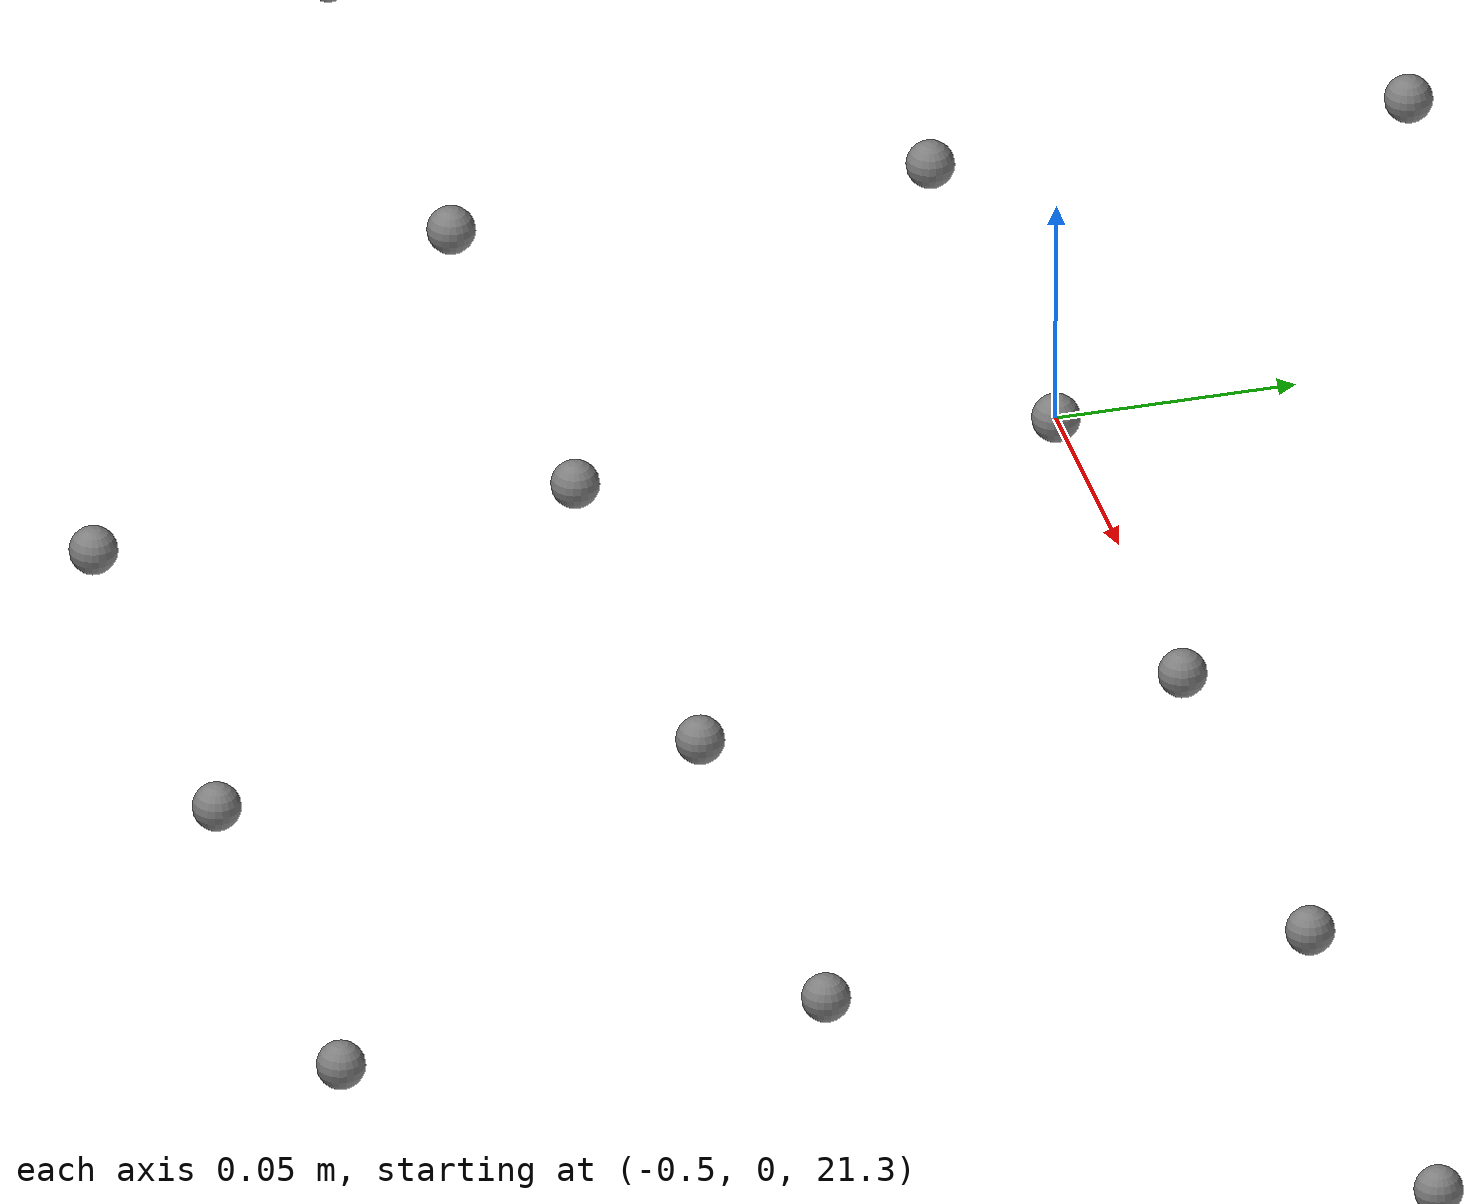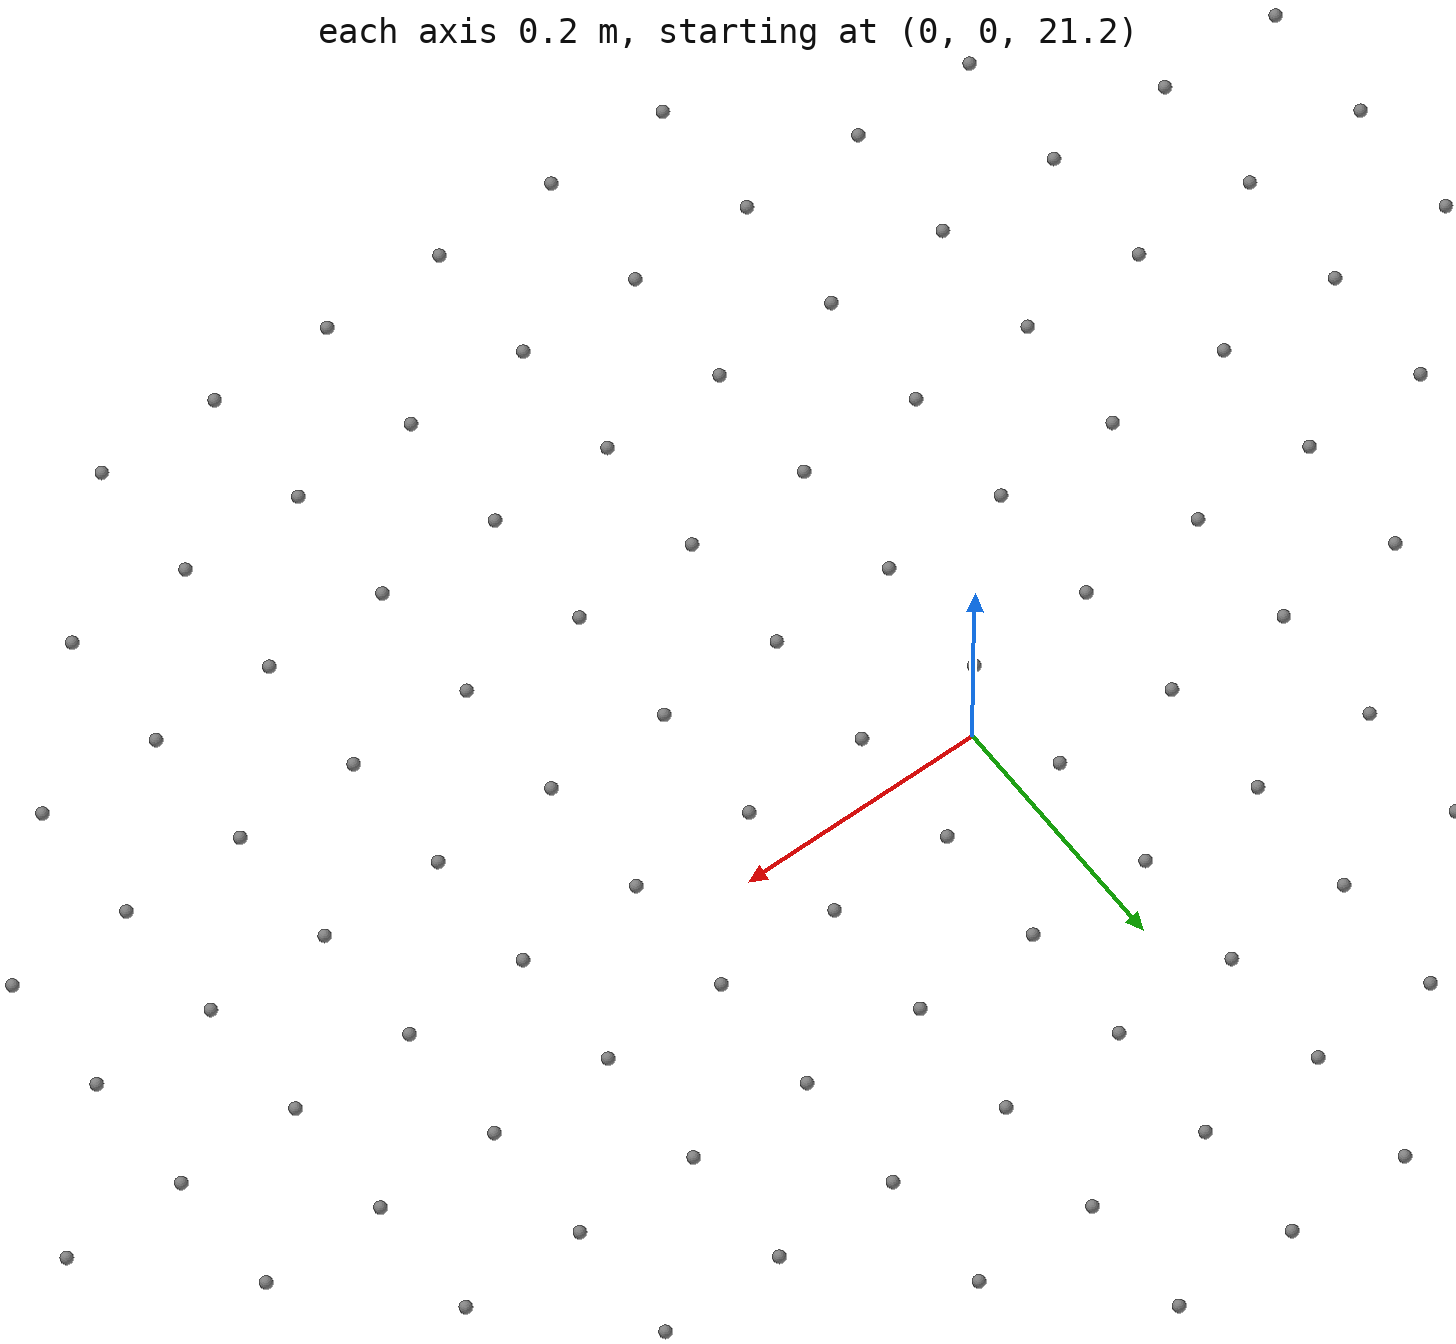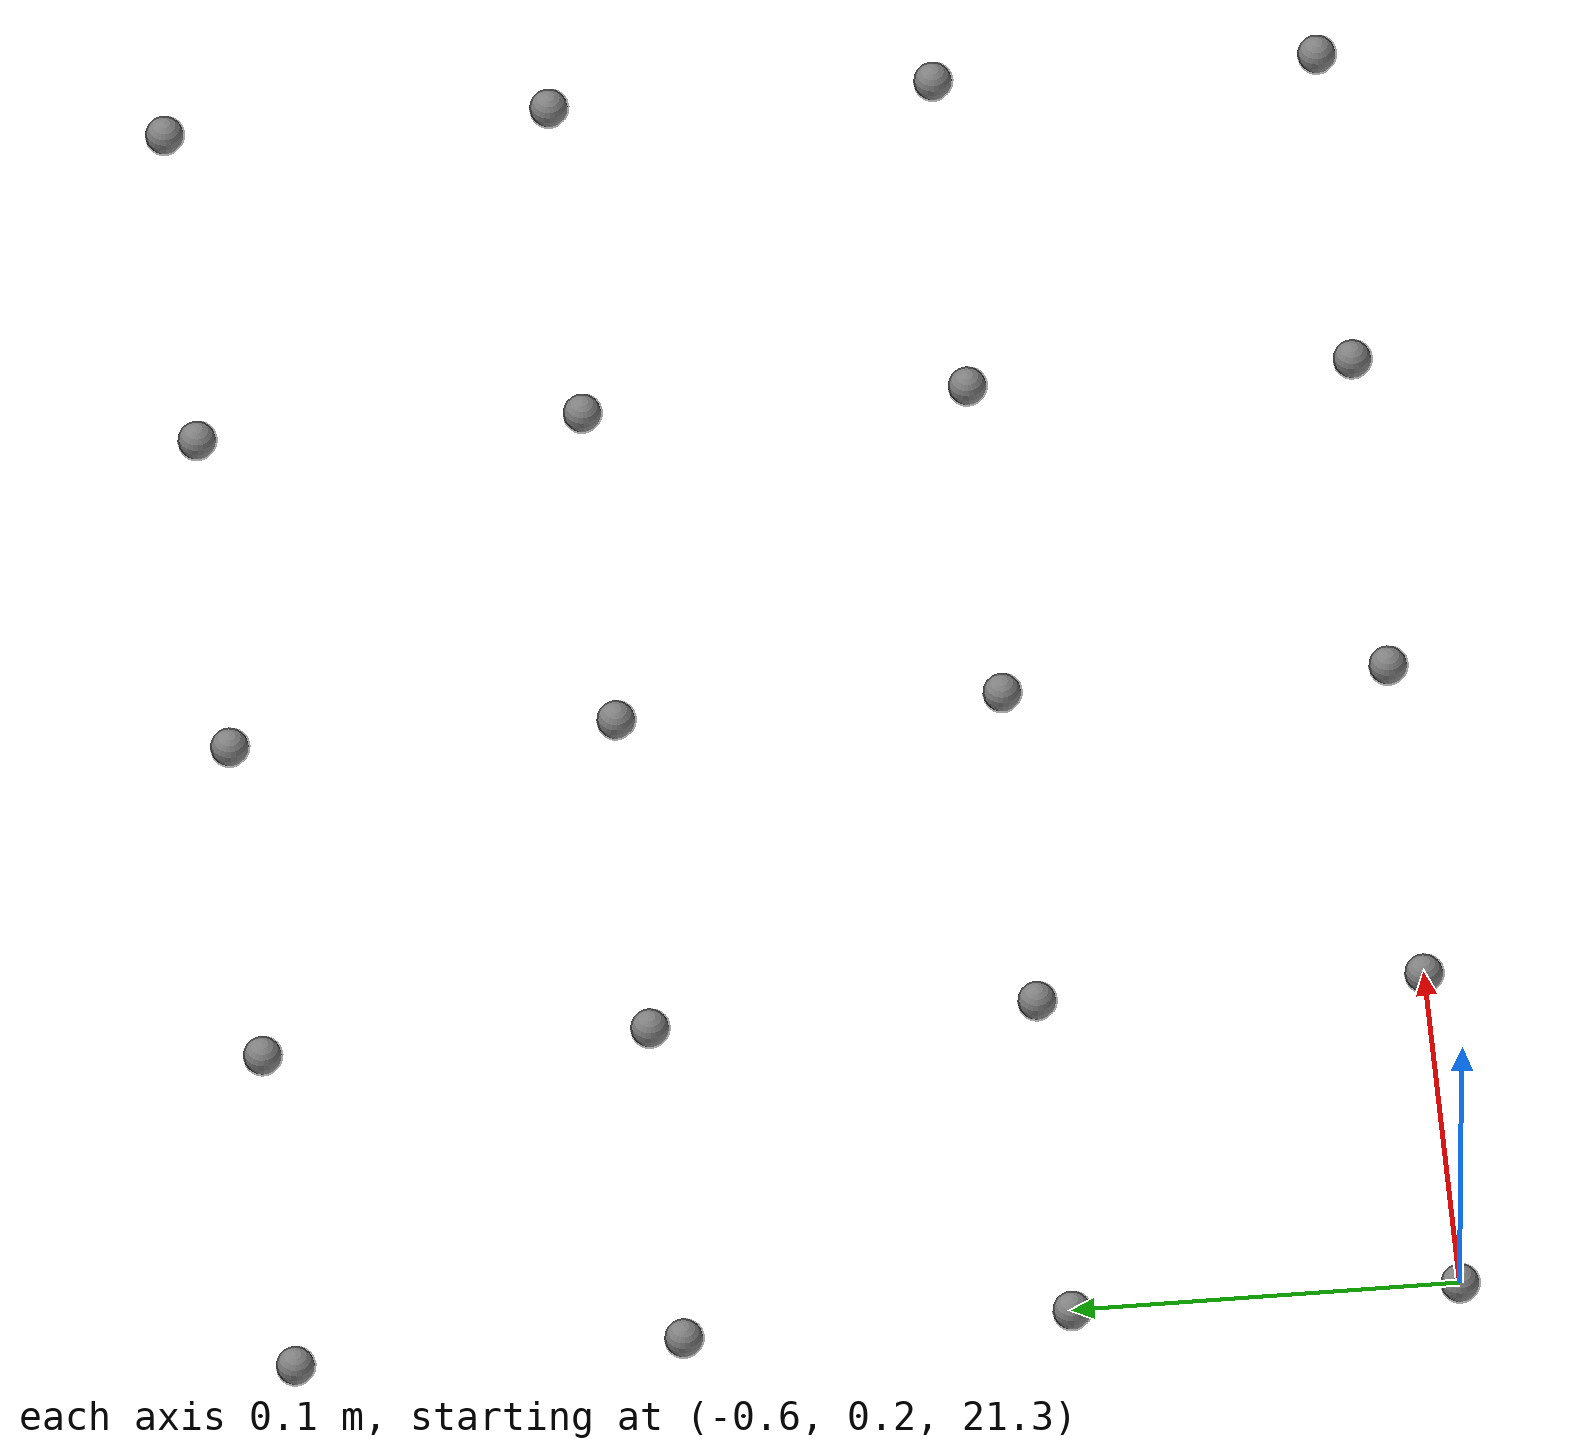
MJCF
<mujoco model="a2">

  <!-- ========== Compiler ========== -->
  <compiler angle="radian" meshdir="../meshes" autolimits="true"/>

  <!-- ========== Simulation Options ========== -->
  <option timestep="0.005" gravity="0 0 -9.81" iterations="4" ls_iterations="4">
    <flag contact="enable" gravity="enable"/>
  </option>

  <!-- ========== Size Parameters (reference) ========== -->
  <size njmax="500" nconmax="500" nstack="500000"/>

  <!-- ========== Defaults ========== -->
  <default>
    <!-- Joint defaults: all revolute joints are limited -->
    <joint type="hinge" damping="0.2" armature="0.01" limited="true"/>
    <geom friction="0.8 0.5 0.5" solimp="0.998 0.998 0.001" solref="0.02 1"/>
    <motor ctrlrange="-200 200" ctrllimited="false"/>

    <!-- Visual-only geoms (no collision) -->
    <default class="visual">
      <geom contype="0" conaffinity="0" group="1"/>
    </default>

    <!-- Collision geoms -->
    <default class="collision">
      <geom contype="1" conaffinity="1" group="3"/>
    </default>

    <!-- Leg segment collision cylinders -->
    <default class="leg_col">
      <geom type="cylinder" contype="1" conaffinity="1" group="3"
            rgba="0.4 0.4 0.4 1" solimp="0.998 0.998 0.0001"/>
    </default>

    <!-- Foot collision -->
    <default class="foot_col">
      <geom type="box" contype="1" conaffinity="1" group="3"
            rgba="0.2 0.6 0.2 1" solimp="0.9 0.99 0.0001"/>
    </default>
  </default>

  <!-- ========== Assets ========== -->
  <asset>
    <!-- STL Mesh files for visual rendering -->
    <mesh name="mesh_base"            file="base_link.STL"/>
    <mesh name="mesh_l_hip_roll"      file="left_hip_roll_link.STL"/>
    <mesh name="mesh_l_hip_yaw"       file="left_hip_yaw_link.STL"/>
    <mesh name="mesh_l_hip_pitch"     file="left_hip_pitch_link.STL"/>
    <mesh name="mesh_l_knee"          file="left_knee_link.STL"/>
    <mesh name="mesh_l_ankle_pitch"   file="left_ankle_pitch_link.STL"/>
    <mesh name="mesh_l_ankle_roll"    file="left_ankle_roll_link.STL"/>
    <mesh name="mesh_r_hip_roll"      file="right_hip_roll_link.STL"/>
    <mesh name="mesh_r_hip_yaw"       file="right_hip_yaw_link.STL"/>
    <mesh name="mesh_r_hip_pitch"     file="right_hip_pitch_link.STL"/>
    <mesh name="mesh_r_knee"          file="right_knee_link.STL"/>
    <mesh name="mesh_r_ankle_pitch"   file="right_ankle_pitch_link.STL"/>
    <mesh name="mesh_r_ankle_roll"    file="right_ankle_roll_link.STL"/>
  </asset>

  <asset>
    <!-- Materials -->
    <texture name="texture_plane" type="2d" builtin="checker"
             rgb1="0.2745 0.5098 0.7059" rgb2="0.5294 0.8078 0.9804"
             width="128" height="128"/>
    <material name="material_plane" reflectance="0.0" texture="texture_plane"
              texrepeat="1 1" texuniform="true"/>
    <material name="gray"  rgba="0.3 0.3 0.3 1"/>
    <material name="blue"  rgba="0.0 0.0 1.0 1"/>
    <material name="red"   rgba="1.0 0.0 0.0 1"/>
    <material name="green" rgba="0.0 1.0 0.0 1"/>
    <material name="white" rgba="0.9 0.9 0.9 1"/>
  </asset>

  <!-- ========== Worldbody ========== -->
  <worldbody>
    <!-- Ground plane -->
    <geom name="floor" type="plane" size="100 100 0.2"
          material="material_plane" conaffinity="2"/>

    <!-- Lighting -->
    <light directional="true" ambient="0.3 0.3 0.3" pos="30 30 30"
           dir="0 -0.5 -1" diffuse="0.5 0.5 0.5" specular="0.5 0.5 0.5"/>

    <!-- ===== BASE LINK (Root) ===== -->
    <body name="base_link" pos="0 0 1.3" euler="0 0 0">
      <freejoint name="base_free"/>

      <!-- Inertial: CoM offset from body origin (from URDF) -->
      <inertial pos="-0.14464 0 0.63562" mass="1.6082"
                fullinertia="1.6349 1.6777 0.06302 0 0.2309 0"/>

      <!-- Visual (mesh only) -->
      <geom class="visual" type="mesh" mesh="mesh_base" rgba="1 0 0 1"/>

      <!-- Collision: bounding box -->
      <geom class="collision" type="box" size="0.2 0.15 0.75"
            pos="-0.2 0 0.75" rgba="0.5 0.5 0.5 1"/>

      <!-- IMU site (mounted near CoM on base) -->
      <site name="site_imu" pos="-0.1 0 0.6" size="0.02"/>

      <site name="site_hs_00_00" pos="-0.800 -0.500 20.0" size="0.005"/>
      <site name="site_hs_01_00" pos="-0.700 -0.500 20.0" size="0.005"/>
      <site name="site_hs_02_00" pos="-0.600 -0.500 20.0" size="0.005"/>
      <site name="site_hs_03_00" pos="-0.500 -0.500 20.0" size="0.005"/>
      <site name="site_hs_04_00" pos="-0.400 -0.500 20.0" size="0.005"/>
      <site name="site_hs_05_00" pos="-0.300 -0.500 20.0" size="0.005"/>
      <site name="site_hs_06_00" pos="-0.200 -0.500 20.0" size="0.005"/>
      <site name="site_hs_07_00" pos="-0.100 -0.500 20.0" size="0.005"/>
      <site name="site_hs_08_00" pos="-0.000 -0.500 20.0" size="0.005"/>
      <site name="site_hs_09_00" pos="0.100 -0.500 20.0" size="0.005"/>
      <site name="site_hs_10_00" pos="0.200 -0.500 20.0" size="0.005"/>
      <site name="site_hs_11_00" pos="0.300 -0.500 20.0" size="0.005"/>
      <site name="site_hs_12_00" pos="0.400 -0.500 20.0" size="0.005"/>
      <site name="site_hs_13_00" pos="0.500 -0.500 20.0" size="0.005"/>
      <site name="site_hs_14_00" pos="0.600 -0.500 20.0" size="0.005"/>
      <site name="site_hs_15_00" pos="0.700 -0.500 20.0" size="0.005"/>
      <site name="site_hs_16_00" pos="0.800 -0.500 20.0" size="0.005"/>
      <site name="site_hs_00_01" pos="-0.800 -0.400 20.0" size="0.005"/>
      <site name="site_hs_01_01" pos="-0.700 -0.400 20.0" size="0.005"/>
      <site name="site_hs_02_01" pos="-0.600 -0.400 20.0" size="0.005"/>
      <site name="site_hs_03_01" pos="-0.500 -0.400 20.0" size="0.005"/>
      <site name="site_hs_04_01" pos="-0.400 -0.400 20.0" size="0.005"/>
      <site name="site_hs_05_01" pos="-0.300 -0.400 20.0" size="0.005"/>
      <site name="site_hs_06_01" pos="-0.200 -0.400 20.0" size="0.005"/>
      <site name="site_hs_07_01" pos="-0.100 -0.400 20.0" size="0.005"/>
      <site name="site_hs_08_01" pos="-0.000 -0.400 20.0" size="0.005"/>
      <site name="site_hs_09_01" pos="0.100 -0.400 20.0" size="0.005"/>
      <site name="site_hs_10_01" pos="0.200 -0.400 20.0" size="0.005"/>
      <site name="site_hs_11_01" pos="0.300 -0.400 20.0" size="0.005"/>
      <site name="site_hs_12_01" pos="0.400 -0.400 20.0" size="0.005"/>
      <site name="site_hs_13_01" pos="0.500 -0.400 20.0" size="0.005"/>
      <site name="site_hs_14_01" pos="0.600 -0.400 20.0" size="0.005"/>
      <site name="site_hs_15_01" pos="0.700 -0.400 20.0" size="0.005"/>
      <site name="site_hs_16_01" pos="0.800 -0.400 20.0" size="0.005"/>
      <site name="site_hs_00_02" pos="-0.800 -0.300 20.0" size="0.005"/>
      <site name="site_hs_01_02" pos="-0.700 -0.300 20.0" size="0.005"/>
      <site name="site_hs_02_02" pos="-0.600 -0.300 20.0" size="0.005"/>
      <site name="site_hs_03_02" pos="-0.500 -0.300 20.0" size="0.005"/>
      <site name="site_hs_04_02" pos="-0.400 -0.300 20.0" size="0.005"/>
      <site name="site_hs_05_02" pos="-0.300 -0.300 20.0" size="0.005"/>
      <site name="site_hs_06_02" pos="-0.200 -0.300 20.0" size="0.005"/>
      <site name="site_hs_07_02" pos="-0.100 -0.300 20.0" size="0.005"/>
      <site name="site_hs_08_02" pos="-0.000 -0.300 20.0" size="0.005"/>
      <site name="site_hs_09_02" pos="0.100 -0.300 20.0" size="0.005"/>
      <site name="site_hs_10_02" pos="0.200 -0.300 20.0" size="0.005"/>
      <site name="site_hs_11_02" pos="0.300 -0.300 20.0" size="0.005"/>
      <site name="site_hs_12_02" pos="0.400 -0.300 20.0" size="0.005"/>
      <site name="site_hs_13_02" pos="0.500 -0.300 20.0" size="0.005"/>
      <site name="site_hs_14_02" pos="0.600 -0.300 20.0" size="0.005"/>
      <site name="site_hs_15_02" pos="0.700 -0.300 20.0" size="0.005"/>
      <site name="site_hs_16_02" pos="0.800 -0.300 20.0" size="0.005"/>
      <site name="site_hs_00_03" pos="-0.800 -0.200 20.0" size="0.005"/>
      <site name="site_hs_01_03" pos="-0.700 -0.200 20.0" size="0.005"/>
      <site name="site_hs_02_03" pos="-0.600 -0.200 20.0" size="0.005"/>
      <site name="site_hs_03_03" pos="-0.500 -0.200 20.0" size="0.005"/>
      <site name="site_hs_04_03" pos="-0.400 -0.200 20.0" size="0.005"/>
      <site name="site_hs_05_03" pos="-0.300 -0.200 20.0" size="0.005"/>
      <site name="site_hs_06_03" pos="-0.200 -0.200 20.0" size="0.005"/>
      <site name="site_hs_07_03" pos="-0.100 -0.200 20.0" size="0.005"/>
      <site name="site_hs_08_03" pos="-0.000 -0.200 20.0" size="0.005"/>
      <site name="site_hs_09_03" pos="0.100 -0.200 20.0" size="0.005"/>
      <site name="site_hs_10_03" pos="0.200 -0.200 20.0" size="0.005"/>
      <site name="site_hs_11_03" pos="0.300 -0.200 20.0" size="0.005"/>
      <site name="site_hs_12_03" pos="0.400 -0.200 20.0" size="0.005"/>
      <site name="site_hs_13_03" pos="0.500 -0.200 20.0" size="0.005"/>
      <site name="site_hs_14_03" pos="0.600 -0.200 20.0" size="0.005"/>
      <site name="site_hs_15_03" pos="0.700 -0.200 20.0" size="0.005"/>
      <site name="site_hs_16_03" pos="0.800 -0.200 20.0" size="0.005"/>
      <site name="site_hs_00_04" pos="-0.800 -0.100 20.0" size="0.005"/>
      <site name="site_hs_01_04" pos="-0.700 -0.100 20.0" size="0.005"/>
      <site name="site_hs_02_04" pos="-0.600 -0.100 20.0" size="0.005"/>
      <site name="site_hs_03_04" pos="-0.500 -0.100 20.0" size="0.005"/>
      <site name="site_hs_04_04" pos="-0.400 -0.100 20.0" size="0.005"/>
      <site name="site_hs_05_04" pos="-0.300 -0.100 20.0" size="0.005"/>
      <site name="site_hs_06_04" pos="-0.200 -0.100 20.0" size="0.005"/>
      <site name="site_hs_07_04" pos="-0.100 -0.100 20.0" size="0.005"/>
      <site name="site_hs_08_04" pos="-0.000 -0.100 20.0" size="0.005"/>
      <site name="site_hs_09_04" pos="0.100 -0.100 20.0" size="0.005"/>
      <site name="site_hs_10_04" pos="0.200 -0.100 20.0" size="0.005"/>
      <site name="site_hs_11_04" pos="0.300 -0.100 20.0" size="0.005"/>
      <site name="site_hs_12_04" pos="0.400 -0.100 20.0" size="0.005"/>
      <site name="site_hs_13_04" pos="0.500 -0.100 20.0" size="0.005"/>
      <site name="site_hs_14_04" pos="0.600 -0.100 20.0" size="0.005"/>
      <site name="site_hs_15_04" pos="0.700 -0.100 20.0" size="0.005"/>
      <site name="site_hs_16_04" pos="0.800 -0.100 20.0" size="0.005"/>
      <site name="site_hs_00_05" pos="-0.800 -0.000 20.0" size="0.005"/>
      <site name="site_hs_01_05" pos="-0.700 -0.000 20.0" size="0.005"/>
      <site name="site_hs_02_05" pos="-0.600 -0.000 20.0" size="0.005"/>
      <site name="site_hs_03_05" pos="-0.500 -0.000 20.0" size="0.005"/>
      <site name="site_hs_04_05" pos="-0.400 -0.000 20.0" size="0.005"/>
      <site name="site_hs_05_05" pos="-0.300 -0.000 20.0" size="0.005"/>
      <site name="site_hs_06_05" pos="-0.200 -0.000 20.0" size="0.005"/>
      <site name="site_hs_07_05" pos="-0.100 -0.000 20.0" size="0.005"/>
      <site name="site_hs_08_05" pos="0.000 -0.000 20.0" size="0.005"/>
      <site name="site_hs_09_05" pos="0.100 -0.000 20.0" size="0.005"/>
      <site name="site_hs_10_05" pos="0.200 -0.000 20.0" size="0.005"/>
      <site name="site_hs_11_05" pos="0.300 -0.000 20.0" size="0.005"/>
      <site name="site_hs_12_05" pos="0.400 -0.000 20.0" size="0.005"/>
      <site name="site_hs_13_05" pos="0.500 -0.000 20.0" size="0.005"/>
      <site name="site_hs_14_05" pos="0.600 -0.000 20.0" size="0.005"/>
      <site name="site_hs_15_05" pos="0.700 -0.000 20.0" size="0.005"/>
      <site name="site_hs_16_05" pos="0.800 -0.000 20.0" size="0.005"/>
      <site name="site_hs_00_06" pos="-0.800 0.100 20.0" size="0.005"/>
      <site name="site_hs_01_06" pos="-0.700 0.100 20.0" size="0.005"/>
      <site name="site_hs_02_06" pos="-0.600 0.100 20.0" size="0.005"/>
      <site name="site_hs_03_06" pos="-0.500 0.100 20.0" size="0.005"/>
      <site name="site_hs_04_06" pos="-0.400 0.100 20.0" size="0.005"/>
      <site name="site_hs_05_06" pos="-0.300 0.100 20.0" size="0.005"/>
      <site name="site_hs_06_06" pos="-0.200 0.100 20.0" size="0.005"/>
      <site name="site_hs_07_06" pos="-0.100 0.100 20.0" size="0.005"/>
      <site name="site_hs_08_06" pos="-0.000 0.100 20.0" size="0.005"/>
      <site name="site_hs_09_06" pos="0.100 0.100 20.0" size="0.005"/>
      <site name="site_hs_10_06" pos="0.200 0.100 20.0" size="0.005"/>
      <site name="site_hs_11_06" pos="0.300 0.100 20.0" size="0.005"/>
      <site name="site_hs_12_06" pos="0.400 0.100 20.0" size="0.005"/>
      <site name="site_hs_13_06" pos="0.500 0.100 20.0" size="0.005"/>
      <site name="site_hs_14_06" pos="0.600 0.100 20.0" size="0.005"/>
      <site name="site_hs_15_06" pos="0.700 0.100 20.0" size="0.005"/>
      <site name="site_hs_16_06" pos="0.800 0.100 20.0" size="0.005"/>
      <site name="site_hs_00_07" pos="-0.800 0.200 20.0" size="0.005"/>
      <site name="site_hs_01_07" pos="-0.700 0.200 20.0" size="0.005"/>
      <site name="site_hs_02_07" pos="-0.600 0.200 20.0" size="0.005"/>
      <site name="site_hs_03_07" pos="-0.500 0.200 20.0" size="0.005"/>
      <site name="site_hs_04_07" pos="-0.400 0.200 20.0" size="0.005"/>
      <site name="site_hs_05_07" pos="-0.300 0.200 20.0" size="0.005"/>
      <site name="site_hs_06_07" pos="-0.200 0.200 20.0" size="0.005"/>
      <site name="site_hs_07_07" pos="-0.100 0.200 20.0" size="0.005"/>
      <site name="site_hs_08_07" pos="-0.000 0.200 20.0" size="0.005"/>
      <site name="site_hs_09_07" pos="0.100 0.200 20.0" size="0.005"/>
      <site name="site_hs_10_07" pos="0.200 0.200 20.0" size="0.005"/>
      <site name="site_hs_11_07" pos="0.300 0.200 20.0" size="0.005"/>
      <site name="site_hs_12_07" pos="0.400 0.200 20.0" size="0.005"/>
      <site name="site_hs_13_07" pos="0.500 0.200 20.0" size="0.005"/>
      <site name="site_hs_14_07" pos="0.600 0.200 20.0" size="0.005"/>
      <site name="site_hs_15_07" pos="0.700 0.200 20.0" size="0.005"/>
      <site name="site_hs_16_07" pos="0.800 0.200 20.0" size="0.005"/>
      <site name="site_hs_00_08" pos="-0.800 0.300 20.0" size="0.005"/>
      <site name="site_hs_01_08" pos="-0.700 0.300 20.0" size="0.005"/>
      <site name="site_hs_02_08" pos="-0.600 0.300 20.0" size="0.005"/>
      <site name="site_hs_03_08" pos="-0.500 0.300 20.0" size="0.005"/>
      <site name="site_hs_04_08" pos="-0.400 0.300 20.0" size="0.005"/>
      <site name="site_hs_05_08" pos="-0.300 0.300 20.0" size="0.005"/>
      <site name="site_hs_06_08" pos="-0.200 0.300 20.0" size="0.005"/>
      <site name="site_hs_07_08" pos="-0.100 0.300 20.0" size="0.005"/>
      <site name="site_hs_08_08" pos="-0.000 0.300 20.0" size="0.005"/>
      <site name="site_hs_09_08" pos="0.100 0.300 20.0" size="0.005"/>
      <site name="site_hs_10_08" pos="0.200 0.300 20.0" size="0.005"/>
      <site name="site_hs_11_08" pos="0.300 0.300 20.0" size="0.005"/>
      <site name="site_hs_12_08" pos="0.400 0.300 20.0" size="0.005"/>
      <site name="site_hs_13_08" pos="0.500 0.300 20.0" size="0.005"/>
      <site name="site_hs_14_08" pos="0.600 0.300 20.0" size="0.005"/>
      <site name="site_hs_15_08" pos="0.700 0.300 20.0" size="0.005"/>
      <site name="site_hs_16_08" pos="0.800 0.300 20.0" size="0.005"/>
      <site name="site_hs_00_09" pos="-0.800 0.400 20.0" size="0.005"/>
      <site name="site_hs_01_09" pos="-0.700 0.400 20.0" size="0.005"/>
      <site name="site_hs_02_09" pos="-0.600 0.400 20.0" size="0.005"/>
      <site name="site_hs_03_09" pos="-0.500 0.400 20.0" size="0.005"/>
      <site name="site_hs_04_09" pos="-0.400 0.400 20.0" size="0.005"/>
      <site name="site_hs_05_09" pos="-0.300 0.400 20.0" size="0.005"/>
      <site name="site_hs_06_09" pos="-0.200 0.400 20.0" size="0.005"/>
      <site name="site_hs_07_09" pos="-0.100 0.400 20.0" size="0.005"/>
      <site name="site_hs_08_09" pos="-0.000 0.400 20.0" size="0.005"/>
      <site name="site_hs_09_09" pos="0.100 0.400 20.0" size="0.005"/>
      <site name="site_hs_10_09" pos="0.200 0.400 20.0" size="0.005"/>
      <site name="site_hs_11_09" pos="0.300 0.400 20.0" size="0.005"/>
      <site name="site_hs_12_09" pos="0.400 0.400 20.0" size="0.005"/>
      <site name="site_hs_13_09" pos="0.500 0.400 20.0" size="0.005"/>
      <site name="site_hs_14_09" pos="0.600 0.400 20.0" size="0.005"/>
      <site name="site_hs_15_09" pos="0.700 0.400 20.0" size="0.005"/>
      <site name="site_hs_16_09" pos="0.800 0.400 20.0" size="0.005"/>
      <site name="site_hs_00_10" pos="-0.800 0.500 20.0" size="0.005"/>
      <site name="site_hs_01_10" pos="-0.700 0.500 20.0" size="0.005"/>
      <site name="site_hs_02_10" pos="-0.600 0.500 20.0" size="0.005"/>
      <site name="site_hs_03_10" pos="-0.500 0.500 20.0" size="0.005"/>
      <site name="site_hs_04_10" pos="-0.400 0.500 20.0" size="0.005"/>
      <site name="site_hs_05_10" pos="-0.300 0.500 20.0" size="0.005"/>
      <site name="site_hs_06_10" pos="-0.200 0.500 20.0" size="0.005"/>
      <site name="site_hs_07_10" pos="-0.100 0.500 20.0" size="0.005"/>
      <site name="site_hs_08_10" pos="-0.000 0.500 20.0" size="0.005"/>
      <site name="site_hs_09_10" pos="0.100 0.500 20.0" size="0.005"/>
      <site name="site_hs_10_10" pos="0.200 0.500 20.0" size="0.005"/>
      <site name="site_hs_11_10" pos="0.300 0.500 20.0" size="0.005"/>
      <site name="site_hs_12_10" pos="0.400 0.500 20.0" size="0.005"/>
      <site name="site_hs_13_10" pos="0.500 0.500 20.0" size="0.005"/>
      <site name="site_hs_14_10" pos="0.600 0.500 20.0" size="0.005"/>
      <site name="site_hs_15_10" pos="0.700 0.500 20.0" size="0.005"/>
      <site name="site_hs_16_10" pos="0.800 0.500 20.0" size="0.005"/>

      <!-- LEFT LEG                                     -->

      <body name="left_hip_roll_link" pos="-0.001 0.075 0">
        <inertial pos="-0.11964 0.10244 -0.05598" mass="0.34283"
                  fullinertia="0.00223 0.00379 0.00287 0.00091 -0.00132 0.00049"/>
        <joint name="left_hip_roll_joint" axis="1 0 0" range="-0.52 2.97"/>
        <geom class="visual" type="mesh" mesh="mesh_l_hip_roll"/>

        <body name="left_hip_yaw_link" pos="-0.166 0.128 -0.0835">
          <inertial pos="-1E-05 0.00843 -0.04551" mass="0.46018"
                    fullinertia="0.00023 0.00035 0.00016 0 0 0"/>
          <joint name="left_hip_yaw_joint" axis="0 0 1" range="-2.76 2.76"/>
          <geom class="visual" type="mesh" mesh="mesh_l_hip_yaw"/>

          <body name="left_hip_pitch_link" pos="0 0.028 -0.0455">
            <inertial pos="0.00472 -0.01824 -0.17562" mass="0.81624"
                      fullinertia="0.01192 0.01225 0.00052 -4E-05 -0.00047 -0.00068"/>
            <joint name="left_hip_pitch_joint" axis="0 1 0" range="-2.53 2.88"/>
            <geom class="visual" type="mesh" mesh="mesh_l_hip_pitch"/>

            <body name="left_knee_link" pos="0 -0.04325 -0.4">
              <inertial pos="0 0.01314 -0.14741" mass="0.10574"
                        fullinertia="0.0018 0.0018 1E-05 0 0 -1E-05"/>
              <joint name="left_knee_joint" axis="0 1 0" range="-0.09 2.88"/>
              <geom class="visual" type="mesh" mesh="mesh_l_knee"/>

              <body name="left_ankle_pitch_link" pos="0 0.00825 -0.392">
                <inertial pos="-0.04625 -0.01898 0" mass="0.04908"
                          fullinertia="7E-05 5E-05 0.00011 -4E-05 0 0"/>
                <joint name="left_ankle_pitch_joint" axis="0 1 0" range="-0.87 0.52"/>
                <geom class="visual" type="mesh" mesh="mesh_l_ankle_pitch"/>

                <body name="left_ankle_roll_link" pos="-0.063229 -0.0765 0">
                  <inertial pos="0.04783 0 -0.08669" mass="0.21284"
                            fullinertia="0.00043 0.00147 0.00134 0 0.00031 0"/>
                  <joint name="left_ankle_roll_joint" axis="1 0 0" range="-0.26 0.26"/>
                  <geom class="visual" type="mesh" mesh="mesh_l_ankle_roll" rgba="0 0 1 1"/>

                  <body name="leg_lfoot_link" pos="0.11 0.0 -0.125" euler="0 0 1.5708">
                    <inertial pos="0 0 0" mass="0.0001"
                              fullinertia="0.000001 0.000001 0.000001 0 0 0"/>
                    <geom class="foot_col" type="box" size="0.06 0.1275 0.015"
                          pos="0 0 0.025" rgba="0 1 0 1"/>
                    <!-- Foot contact site (bottom of foot) -->
                    <site name="site_l_foot" pos="0 0 0.01" size="0.01"/>
                  </body>
                </body><!-- /left_ankle_roll -->
              </body><!-- /left_ankle_pitch -->
            </body><!-- /left_knee -->
          </body><!-- /left_hip_pitch -->
        </body><!-- /left_hip_yaw -->
      </body><!-- /left_hip_roll -->

      <!-- RIGHT LEG                                    -->

      <body name="right_hip_roll_link" pos="-0.001 -0.075 0">
        <inertial pos="-0.11964 -0.10243 -0.05598" mass="0.34281"
                  fullinertia="0.00223 0.00379 0.00287 -0.00091 -0.00132 -0.00049"/>
        <joint name="right_hip_roll_joint" axis="1 0 0" range="-2.97 0.52"/>
        <geom class="visual" type="mesh" mesh="mesh_r_hip_roll"/>

        <body name="right_hip_yaw_link" pos="-0.166 -0.128 -0.0835">
          <inertial pos="-1E-05 -0.00843 -0.04551" mass="0.46018"
                    fullinertia="0.00023 0.00035 0.00016 0 0 0"/>
          <joint name="right_hip_yaw_joint" axis="0 0 1" range="-2.76 2.76"/>
          <geom class="visual" type="mesh" mesh="mesh_r_hip_yaw"/>

          <body name="right_hip_pitch_link" pos="0 -0.028 -0.0455">
            <inertial pos="0.00472 0.01824 -0.17562" mass="0.81624"
                      fullinertia="0.01192 0.01225 0.00052 4E-05 -0.00047 0.00068"/>
            <joint name="right_hip_pitch_joint" axis="0 1 0" range="-2.53 2.88"/>
            <geom class="visual" type="mesh" mesh="mesh_r_hip_pitch"/>

            <body name="right_knee_link" pos="0 0.04325 -0.4">
              <inertial pos="0 -0.01314 -0.14741" mass="0.10574"
                        fullinertia="0.0018 0.0018 1E-05 0 0 1E-05"/>
              <joint name="right_knee_joint" axis="0 1 0" range="-0.09 2.88"/>
              <geom class="visual" type="mesh" mesh="mesh_r_knee"/>

              <body name="right_ankle_pitch_link" pos="0 -0.00825 -0.392">
                <inertial pos="-0.04625 0.01898 0" mass="0.04908"
                          fullinertia="7E-05 5E-05 0.00011 4E-05 0 0"/>
                <joint name="right_ankle_pitch_joint" axis="0 1 0" range="-0.87 0.52"/>
                <geom class="visual" type="mesh" mesh="mesh_r_ankle_pitch"/>

                <body name="right_ankle_roll_link" pos="-0.063229 0.0765 0">
                  <inertial pos="0.04784 0 -0.08669" mass="0.21281"
                            fullinertia="0.00043 0.00147 0.00134 0 0.00031 0"/>
                  <joint name="right_ankle_roll_joint" axis="1 0 0" range="-0.26 0.26"/>
                  <geom class="visual" type="mesh" mesh="mesh_r_ankle_roll" rgba="0 0 1 1"/>

                  <body name="leg_rfoot_link" pos="0.11 0.0 -0.125" euler="0 0 1.5708">
                    <inertial pos="0 0 0" mass="0.0001"
                              fullinertia="0.000001 0.000001 0.000001 0 0 0"/>
                    <geom class="foot_col" type="box" size="0.06 0.1275 0.015"
                          pos="0 0 0.025" rgba="0 1 0 1"/>
                    <!-- Foot contact site (bottom of foot) -->
                    <site name="site_r_foot" pos="0 0 0.01" size="0.01"/>
                  </body>
                </body><!-- /right_ankle_roll -->
              </body><!-- /right_ankle_pitch -->
            </body><!-- /right_knee -->
          </body><!-- /right_hip_pitch -->
        </body><!-- /right_hip_yaw -->
      </body><!-- /right_hip_roll -->

    </body><!-- /base_link -->
  </worldbody>

  <!--  ACTUATORS                                                   -->
  <!--  Position-controlled PD motors for all 12 revolute joints    -->
  <!--  kp/kv tuned for stable sim-to-sim transfer                  -->
  <actuator>

    <position name="act_left_hip_roll"      joint="left_hip_roll_joint"
              ctrlrange="-0.52 2.97"  kp="60.0" kv="0.2" forcerange="-60 60"/>
    <position name="act_left_hip_yaw"       joint="left_hip_yaw_joint"
              ctrlrange="-2.76 2.76"  kp="60.0" kv="0.2" forcerange="-40 40"/>
    <position name="act_left_hip_pitch"     joint="left_hip_pitch_joint"
              ctrlrange="-2.53 2.88"  kp="80.0" kv="0.2" forcerange="-100 100"/>
    <position name="act_left_knee"          joint="left_knee_joint"
              ctrlrange="-0.09 2.88"  kp="80.0" kv="0.2" forcerange="-100 100"/>
    <position name="act_left_ankle_pitch"   joint="left_ankle_pitch_joint"
              ctrlrange="-0.87 0.52"  kp="40.0" kv="0.2" forcerange="-20 20"/>
    <position name="act_left_ankle_roll"    joint="left_ankle_roll_joint"
              ctrlrange="-0.26 0.26"  kp="40.0" kv="0.2" forcerange="-20 20"/>

    <position name="act_right_hip_roll"     joint="right_hip_roll_joint"
              ctrlrange="-2.97 0.52"  kp="60.0" kv="0.1" forcerange="-60 60"/>
    <position name="act_right_hip_yaw"      joint="right_hip_yaw_joint"
              ctrlrange="-2.76 2.76"  kp="60.0" kv="0.2" forcerange="-40 40"/>
    <position name="act_right_hip_pitch"    joint="right_hip_pitch_joint"
              ctrlrange="-2.53 2.88"  kp="80.0" kv="0.2" forcerange="-100 100"/>
    <position name="act_right_knee"         joint="right_knee_joint"
              ctrlrange="-0.09 2.88"  kp="80.0" kv="0.2" forcerange="-100 100"/>
    <position name="act_right_ankle_pitch"  joint="right_ankle_pitch_joint"
              ctrlrange="-0.87 0.52"  kp="40.0" kv="0.2" forcerange="-20 20"/>
    <position name="act_right_ankle_roll"   joint="right_ankle_roll_joint"
              ctrlrange="-0.26 0.26"  kp="40.0" kv="0.2" forcerange="-20 20"/>
  </actuator>

  <!--  SENSORS                                                     -->
  <!--  Full sensor suite for sim-to-sim RL transfer:               -->
  <!--    - Joint positions (12)                                    -->
  <!--    - Joint velocities (12)                                   -->
  <!--    - Actuator forces/torques (12)                            -->
  <!--    - Base IMU: accel, gyro, quat, linvel, angvel             -->
  <!--    - Foot contact (2)                                        -->
  <!--    - Base world position                                     -->
  <sensor>
    <!-- ===== Joint Position Sensors ===== -->
    <jointpos name="sen_left_hip_roll_pos"      joint="left_hip_roll_joint"/>
    <jointpos name="sen_left_hip_yaw_pos"       joint="left_hip_yaw_joint"/>
    <jointpos name="sen_left_hip_pitch_pos"     joint="left_hip_pitch_joint"/>
    <jointpos name="sen_left_knee_pos"          joint="left_knee_joint"/>
    <jointpos name="sen_left_ankle_pitch_pos"   joint="left_ankle_pitch_joint"/>
    <jointpos name="sen_left_ankle_roll_pos"    joint="left_ankle_roll_joint"/>

    <jointpos name="sen_right_hip_roll_pos"     joint="right_hip_roll_joint"/>
    <jointpos name="sen_right_hip_yaw_pos"      joint="right_hip_yaw_joint"/>
    <jointpos name="sen_right_hip_pitch_pos"    joint="right_hip_pitch_joint"/>
    <jointpos name="sen_right_knee_pos"         joint="right_knee_joint"/>
    <jointpos name="sen_right_ankle_pitch_pos"  joint="right_ankle_pitch_joint"/>
    <jointpos name="sen_right_ankle_roll_pos"   joint="right_ankle_roll_joint"/>

    <!-- ===== Joint Velocity Sensors ===== -->
    <jointvel name="sen_left_hip_roll_vel"      joint="left_hip_roll_joint"/>
    <jointvel name="sen_left_hip_yaw_vel"       joint="left_hip_yaw_joint"/>
    <jointvel name="sen_left_hip_pitch_vel"     joint="left_hip_pitch_joint"/>
    <jointvel name="sen_left_knee_vel"          joint="left_knee_joint"/>
    <jointvel name="sen_left_ankle_pitch_vel"   joint="left_ankle_pitch_joint"/>
    <jointvel name="sen_left_ankle_roll_vel"    joint="left_ankle_roll_joint"/>

    <jointvel name="sen_right_hip_roll_vel"     joint="right_hip_roll_joint"/>
    <jointvel name="sen_right_hip_yaw_vel"      joint="right_hip_yaw_joint"/>
    <jointvel name="sen_right_hip_pitch_vel"    joint="right_hip_pitch_joint"/>
    <jointvel name="sen_right_knee_vel"         joint="right_knee_joint"/>
    <jointvel name="sen_right_ankle_pitch_vel"  joint="right_ankle_pitch_joint"/>
    <jointvel name="sen_right_ankle_roll_vel"   joint="right_ankle_roll_joint"/>

    <!-- ===== Actuator Force/Torque Sensors ===== -->
    <actuatorfrc name="sen_left_hip_roll_trq"      actuator="act_left_hip_roll"/>
    <actuatorfrc name="sen_left_hip_yaw_trq"       actuator="act_left_hip_yaw"/>
    <actuatorfrc name="sen_left_hip_pitch_trq"     actuator="act_left_hip_pitch"/>
    <actuatorfrc name="sen_left_knee_trq"          actuator="act_left_knee"/>
    <actuatorfrc name="sen_left_ankle_pitch_trq"   actuator="act_left_ankle_pitch"/>
    <actuatorfrc name="sen_left_ankle_roll_trq"    actuator="act_left_ankle_roll"/>

    <actuatorfrc name="sen_right_hip_roll_trq"     actuator="act_right_hip_roll"/>
    <actuatorfrc name="sen_right_hip_yaw_trq"      actuator="act_right_hip_yaw"/>
    <actuatorfrc name="sen_right_hip_pitch_trq"    actuator="act_right_hip_pitch"/>
    <actuatorfrc name="sen_right_knee_trq"         actuator="act_right_knee"/>
    <actuatorfrc name="sen_right_ankle_pitch_trq"  actuator="act_right_ankle_pitch"/>
    <actuatorfrc name="sen_right_ankle_roll_trq"   actuator="act_right_ankle_roll"/>

    <!-- ===== Base IMU Sensors (body frame) ===== -->
    <framequat    name="sen_base_quat"    objtype="body" objname="base_link"/>
    <framelinvel  name="sen_base_linvel"  objtype="body" objname="base_link"/>
    <frameangvel  name="sen_base_angvel"  objtype="body" objname="base_link"/>
    <framepos     name="sen_base_pos"     objtype="body" objname="base_link"/>
    <accelerometer name="sen_base_accel"  site="site_imu"/>
    <gyro          name="sen_base_gyro"   site="site_imu"/>

    <!-- ===== Foot Contact Sensors ===== -->
    <touch name="sen_left_foot_contact"  site="site_l_foot"/>
    <touch name="sen_right_foot_contact" site="site_r_foot"/>
  </sensor>

</mujoco>
